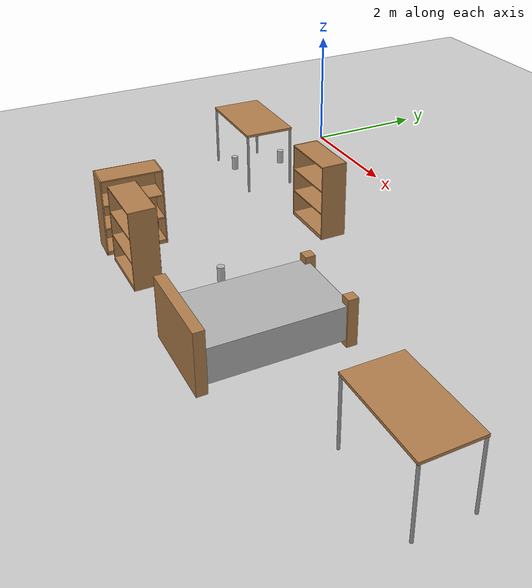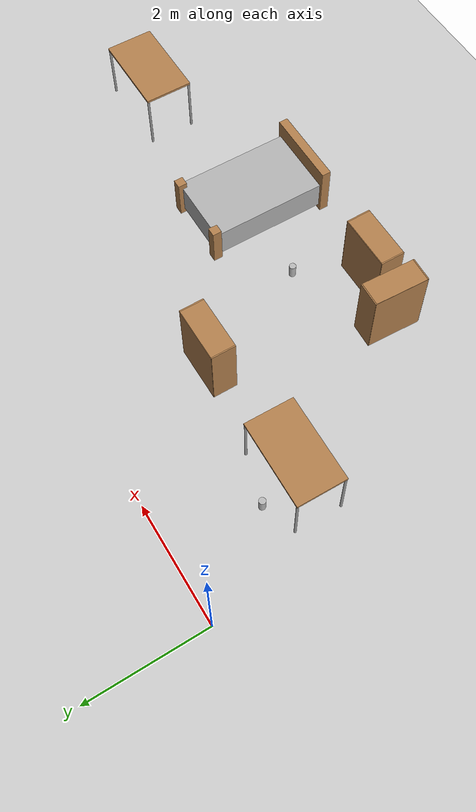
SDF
<sdf version="1.6">
 <world name="default">
  <model name="ground_plane">
   <static>1</static>
   <link name="link">
    <collision name="collision">
     <geometry><plane><normal>0 0 1</normal><size>100 100</size></plane></geometry>
     <surface><friction><ode><mu>100</mu><mu2>50</mu2></ode></friction></surface>
    </collision>
    <visual name="visual">
     <cast_shadows>0</cast_shadows>
     <geometry><plane><normal>0 0 1</normal><size>100 100</size></plane></geometry>
     <material>
      <script><uri>file://media/materials/scripts/gazebo.material</uri><name>Gazebo/Grey</name></script>
     </material>
    </visual>
   </link>
  </model>
  <model name="beer">
   <link name="link">
    <pose>0 0 0.115 0 -0 0</pose>
    <inertial>
     <mass>0.39</mass>
     <inertia><ixx>0.00058</ixx><ixy>0</ixy><ixz>0</ixz><iyy>0.00058</iyy><iyz>0</iyz><izz>0.00019</izz></inertia>
    </inertial>
    <collision name="collision">
     <geometry><cylinder><radius>0.055</radius><length>0.23</length></cylinder></geometry>
    </collision>
    <visual name="visual">
     <geometry><cylinder><radius>0.055</radius><length>0.23</length></cylinder></geometry>
     <material>
      <script>
       <uri>model://beer/materials/scripts</uri>
       <uri>model://beer/materials/textures</uri>
       <name>Beer/Diffuse</name>
      </script>
     </material>
    </visual>
   </link>
   <pose>1.03601 -1.42637 0.19999 1e-06 -2.7e-05 0.001528</pose>
  </model>
  <model name="beer_clone_0">
   <link name="link">
    <pose>0 0 0.115 0 -0 0</pose>
    <inertial>
     <mass>0.39</mass>
     <inertia><ixx>0.00058</ixx><ixy>0</ixy><ixz>0</ixz><iyy>0.00058</iyy><iyz>0</iyz><izz>0.00019</izz></inertia>
    </inertial>
    <collision name="collision">
     <geometry><cylinder><radius>0.055</radius><length>0.23</length></cylinder></geometry>
    </collision>
    <visual name="visual">
     <geometry><cylinder><radius>0.055</radius><length>0.23</length></cylinder></geometry>
     <material>
      <script>
       <uri>model://beer/materials/scripts</uri>
       <uri>model://beer/materials/textures</uri>
       <name>Beer/Diffuse</name>
      </script>
     </material>
    </visual>
   </link>
   <pose>0.906193 -2.25098 0.200001 3e-06 -2.5e-05 0.002007</pose>
  </model>
  <model name="beer_clone_3">
   <link name="link">
    <pose>0 0 0.115 0 -0 0</pose>
    <inertial>
     <mass>0.39</mass>
     <inertia><ixx>0.00058</ixx><ixy>0</ixy><ixz>0</ixz><iyy>0.00058</iyy><iyz>0</iyz><izz>0.00019</izz></inertia>
    </inertial>
    <collision name="collision">
     <geometry><cylinder><radius>0.055</radius><length>0.23</length></cylinder></geometry>
    </collision>
    <visual name="visual">
     <geometry><cylinder><radius>0.055</radius><length>0.23</length></cylinder></geometry>
     <material>
      <script>
       <uri>model://beer/materials/scripts</uri>
       <uri>model://beer/materials/textures</uri>
       <name>Beer/Diffuse</name>
      </script>
     </material>
    </visual>
   </link>
   <pose>4.12383 -3.89543 0.19999 -1e-06 2.6e-05 0.001054</pose>
  </model>
  <model name="table_1_clone_0">
   <static>0</static>
   <link name="link">
    <collision name="surface">
     <pose>0 0 1 0 -0 0</pose>
     <geometry><box><size>1.5 0.8 0.03</size></box></geometry>
     <surface><friction><ode><mu>0.6</mu><mu2>0.6</mu2></ode></friction></surface>
    </collision>
    <visual name="visual1">
     <pose>0 0 1 0 -0 0</pose>
     <geometry><box><size>1.4 0.8 0.04</size></box></geometry>
     <material>
      <script><uri>file://media/materials/scripts/gazebo.material</uri><name>Gazebo/Wood</name></script>
     </material>
    </visual>
    <collision name="front_left_leg">
     <pose>0.68 0.38 0.5 0 -0 0</pose>
     <geometry><cylinder><radius>0.02</radius><length>1</length></cylinder></geometry>
    </collision>
    <visual name="front_left_leg">
     <pose>0.68 0.38 0.5 0 -0 0</pose>
     <geometry><cylinder><radius>0.02</radius><length>1</length></cylinder></geometry>
     <material>
      <script><uri>file://media/materials/scripts/gazebo.material</uri><name>Gazebo/Grey</name></script>
     </material>
    </visual>
    <collision name="front_right_leg">
     <pose>0.68 -0.38 0.5 0 -0 0</pose>
     <geometry><cylinder><radius>0.02</radius><length>1</length></cylinder></geometry>
    </collision>
    <visual name="front_right_leg">
     <pose>0.68 -0.38 0.5 0 -0 0</pose>
     <geometry><cylinder><radius>0.02</radius><length>1</length></cylinder></geometry>
     <material>
      <script><uri>file://media/materials/scripts/gazebo.material</uri><name>Gazebo/Grey</name></script>
     </material>
    </visual>
    <collision name="back_right_leg">
     <pose>-0.68 -0.38 0.5 0 -0 0</pose>
     <geometry><cylinder><radius>0.02</radius><length>1</length></cylinder></geometry>
    </collision>
    <visual name="back_right_leg">
     <pose>-0.68 -0.38 0.5 0 -0 0</pose>
     <geometry><cylinder><radius>0.02</radius><length>1</length></cylinder></geometry>
     <material>
      <script><uri>file://media/materials/scripts/gazebo.material</uri><name>Gazebo/Grey</name></script>
     </material>
    </visual>
    <collision name="back_left_leg">
     <pose>-0.68 0.38 0.5 0 -0 0</pose>
     <geometry><cylinder><radius>0.02</radius><length>1</length></cylinder></geometry>
    </collision>
    <visual name="back_left_leg">
     <pose>-0.68 0.38 0.5 0 -0 0</pose>
     <geometry><cylinder><radius>0.02</radius><length>1</length></cylinder></geometry>
     <material>
      <script><uri>file://media/materials/scripts/gazebo.material</uri><name>Gazebo/Grey</name></script>
     </material>
    </visual>
    <inertial>
     <inertia><ixx>1</ixx><ixy>0</ixy><ixz>0</ixz><iyy>1</iyy><iyz>0</iyz><izz>1</izz></inertia>
     <mass>1</mass>
    </inertial>
   </link>
   <pose>1.15753 -2.01599 0.19999 0 0 -0.017169</pose>
  </model>
  <model name="table_1_clone_1">
   <static>0</static>
   <link name="link">
    <collision name="surface">
     <pose>0 0 1 0 -0 0</pose>
     <geometry><box><size>1.5 0.8 0.03</size></box></geometry>
     <surface><friction><ode><mu>0.6</mu><mu2>0.6</mu2></ode></friction></surface>
    </collision>
    <visual name="visual1">
     <pose>0 0 1 0 -0 0</pose>
     <geometry><box><size>1.4 0.8 0.04</size></box></geometry>
     <material>
      <script><uri>file://media/materials/scripts/gazebo.material</uri><name>Gazebo/Wood</name></script>
     </material>
    </visual>
    <collision name="front_left_leg">
     <pose>0.68 0.38 0.5 0 -0 0</pose>
     <geometry><cylinder><radius>0.02</radius><length>1</length></cylinder></geometry>
    </collision>
    <visual name="front_left_leg">
     <pose>0.68 0.38 0.5 0 -0 0</pose>
     <geometry><cylinder><radius>0.02</radius><length>1</length></cylinder></geometry>
     <material>
      <script><uri>file://media/materials/scripts/gazebo.material</uri><name>Gazebo/Grey</name></script>
     </material>
    </visual>
    <collision name="front_right_leg">
     <pose>0.68 -0.38 0.5 0 -0 0</pose>
     <geometry><cylinder><radius>0.02</radius><length>1</length></cylinder></geometry>
    </collision>
    <visual name="front_right_leg">
     <pose>0.68 -0.38 0.5 0 -0 0</pose>
     <geometry><cylinder><radius>0.02</radius><length>1</length></cylinder></geometry>
     <material>
      <script><uri>file://media/materials/scripts/gazebo.material</uri><name>Gazebo/Grey</name></script>
     </material>
    </visual>
    <collision name="back_right_leg">
     <pose>-0.68 -0.38 0.5 0 -0 0</pose>
     <geometry><cylinder><radius>0.02</radius><length>1</length></cylinder></geometry>
    </collision>
    <visual name="back_right_leg">
     <pose>-0.68 -0.38 0.5 0 -0 0</pose>
     <geometry><cylinder><radius>0.02</radius><length>1</length></cylinder></geometry>
     <material>
      <script><uri>file://media/materials/scripts/gazebo.material</uri><name>Gazebo/Grey</name></script>
     </material>
    </visual>
    <collision name="back_left_leg">
     <pose>-0.68 0.38 0.5 0 -0 0</pose>
     <geometry><cylinder><radius>0.02</radius><length>1</length></cylinder></geometry>
    </collision>
    <visual name="back_left_leg">
     <pose>-0.68 0.38 0.5 0 -0 0</pose>
     <geometry><cylinder><radius>0.02</radius><length>1</length></cylinder></geometry>
     <material>
      <script><uri>file://media/materials/scripts/gazebo.material</uri><name>Gazebo/Grey</name></script>
     </material>
    </visual>
    <inertial>
     <inertia><ixx>1</ixx><ixy>0</ixy><ixz>0</ixz><iyy>1</iyy><iyz>0</iyz><izz>1</izz></inertia>
     <mass>1</mass>
    </inertial>
   </link>
   <pose>8.36915 -3.69644 0.199992 -1e-06 1e-06 4.6e-05</pose>
  </model>
  <model name="bookshelf">
   <static>1</static>
   <link name="link">
    <inertial><mass>1</mass></inertial>
    <collision name="back">
     <pose>0 0.005 0.6 0 -0 0</pose>
     <geometry><box><size>0.9 0.01 1.2</size></box></geometry>
    </collision>
    <visual name="visual1">
     <pose>0 0.005 0.6 0 -0 0</pose>
     <geometry><box><size>0.9 0.01 1.2</size></box></geometry>
     <material>
      <script><uri>file://media/materials/scripts/gazebo.material</uri><name>Gazebo/Wood</name></script>
     </material>
    </visual>
    <collision name="left_side">
     <pose>0.45 -0.195 0.6 0 -0 0</pose>
     <geometry><box><size>0.02 0.4 1.2</size></box></geometry>
    </collision>
    <visual name="visual2">
     <pose>0.45 -0.195 0.6 0 -0 0</pose>
     <geometry><box><size>0.02 0.4 1.2</size></box></geometry>
     <material>
      <script><uri>file://media/materials/scripts/gazebo.material</uri><name>Gazebo/Wood</name></script>
     </material>
    </visual>
    <collision name="right_side">
     <pose>-0.45 -0.195 0.6 0 -0 0</pose>
     <geometry><box><size>0.02 0.4 1.2</size></box></geometry>
    </collision>
    <visual name="visual3">
     <pose>-0.45 -0.195 0.6 0 -0 0</pose>
     <geometry><box><size>0.02 0.4 1.2</size></box></geometry>
     <material>
      <script><uri>file://media/materials/scripts/gazebo.material</uri><name>Gazebo/Wood</name></script>
     </material>
    </visual>
    <collision name="bottom">
     <pose>0 -0.195 0.03 0 -0 0</pose>
     <geometry><box><size>0.88 0.4 0.06</size></box></geometry>
    </collision>
    <visual name="visual4">
     <pose>0 -0.195 0.03 0 -0 0</pose>
     <geometry><box><size>0.88 0.4 0.06</size></box></geometry>
     <material>
      <script><uri>file://media/materials/scripts/gazebo.material</uri><name>Gazebo/Wood</name></script>
     </material>
    </visual>
    <collision name="top">
     <pose>0 -0.195 1.19 0 -0 0</pose>
     <geometry><box><size>0.88 0.4 0.02</size></box></geometry>
    </collision>
    <visual name="visual5">
     <pose>0 -0.195 1.19 0 -0 0</pose>
     <geometry><box><size>0.88 0.4 0.02</size></box></geometry>
     <material>
      <script><uri>file://media/materials/scripts/gazebo.material</uri><name>Gazebo/Wood</name></script>
     </material>
    </visual>
    <collision name="low_shelf">
     <pose>0 -0.195 0.43 0 -0 0</pose>
     <geometry><box><size>0.88 0.4 0.02</size></box></geometry>
    </collision>
    <visual name="visual6">
     <pose>0 -0.195 0.43 0 -0 0</pose>
     <geometry><box><size>0.88 0.4 0.02</size></box></geometry>
     <material>
      <script><uri>file://media/materials/scripts/gazebo.material</uri><name>Gazebo/Wood</name></script>
     </material>
    </visual>
    <collision name="high_shelf">
     <pose>0 -0.195 0.8 0 -0 0</pose>
     <geometry><box><size>0.88 0.4 0.02</size></box></geometry>
    </collision>
    <visual name="visual7">
     <pose>0 -0.195 0.8 0 -0 0</pose>
     <geometry><box><size>0.88 0.4 0.02</size></box></geometry>
     <material>
      <script><uri>file://media/materials/scripts/gazebo.material</uri><name>Gazebo/Wood</name></script>
     </material>
    </visual>
   </link>
   <pose>3.3336 -1.72318 0.202596 0 -0 0</pose>
  </model>
  <model name="bookshelf_clone">
   <static>1</static>
   <link name="link">
    <inertial><mass>1</mass></inertial>
    <collision name="back">
     <pose>0 0.005 0.6 0 -0 0</pose>
     <geometry><box><size>0.9 0.01 1.2</size></box></geometry>
    </collision>
    <visual name="visual1">
     <pose>0 0.005 0.6 0 -0 0</pose>
     <geometry><box><size>0.9 0.01 1.2</size></box></geometry>
     <material>
      <script><uri>file://media/materials/scripts/gazebo.material</uri><name>Gazebo/Wood</name></script>
     </material>
    </visual>
    <collision name="left_side">
     <pose>0.45 -0.195 0.6 0 -0 0</pose>
     <geometry><box><size>0.02 0.4 1.2</size></box></geometry>
    </collision>
    <visual name="visual2">
     <pose>0.45 -0.195 0.6 0 -0 0</pose>
     <geometry><box><size>0.02 0.4 1.2</size></box></geometry>
     <material>
      <script><uri>file://media/materials/scripts/gazebo.material</uri><name>Gazebo/Wood</name></script>
     </material>
    </visual>
    <collision name="right_side">
     <pose>-0.45 -0.195 0.6 0 -0 0</pose>
     <geometry><box><size>0.02 0.4 1.2</size></box></geometry>
    </collision>
    <visual name="visual3">
     <pose>-0.45 -0.195 0.6 0 -0 0</pose>
     <geometry><box><size>0.02 0.4 1.2</size></box></geometry>
     <material>
      <script><uri>file://media/materials/scripts/gazebo.material</uri><name>Gazebo/Wood</name></script>
     </material>
    </visual>
    <collision name="bottom">
     <pose>0 -0.195 0.03 0 -0 0</pose>
     <geometry><box><size>0.88 0.4 0.06</size></box></geometry>
    </collision>
    <visual name="visual4">
     <pose>0 -0.195 0.03 0 -0 0</pose>
     <geometry><box><size>0.88 0.4 0.06</size></box></geometry>
     <material>
      <script><uri>file://media/materials/scripts/gazebo.material</uri><name>Gazebo/Wood</name></script>
     </material>
    </visual>
    <collision name="top">
     <pose>0 -0.195 1.19 0 -0 0</pose>
     <geometry><box><size>0.88 0.4 0.02</size></box></geometry>
    </collision>
    <visual name="visual5">
     <pose>0 -0.195 1.19 0 -0 0</pose>
     <geometry><box><size>0.88 0.4 0.02</size></box></geometry>
     <material>
      <script><uri>file://media/materials/scripts/gazebo.material</uri><name>Gazebo/Wood</name></script>
     </material>
    </visual>
    <collision name="low_shelf">
     <pose>0 -0.195 0.43 0 -0 0</pose>
     <geometry><box><size>0.88 0.4 0.02</size></box></geometry>
    </collision>
    <visual name="visual6">
     <pose>0 -0.195 0.43 0 -0 0</pose>
     <geometry><box><size>0.88 0.4 0.02</size></box></geometry>
     <material>
      <script><uri>file://media/materials/scripts/gazebo.material</uri><name>Gazebo/Wood</name></script>
     </material>
    </visual>
    <collision name="high_shelf">
     <pose>0 -0.195 0.8 0 -0 0</pose>
     <geometry><box><size>0.88 0.4 0.02</size></box></geometry>
    </collision>
    <visual name="visual7">
     <pose>0 -0.195 0.8 0 -0 0</pose>
     <geometry><box><size>0.88 0.4 0.02</size></box></geometry>
     <material>
      <script><uri>file://media/materials/scripts/gazebo.material</uri><name>Gazebo/Wood</name></script>
     </material>
    </visual>
   </link>
   <pose>3.3921 -4.66436 0.202596 0 -0 0</pose>
  </model>
  <model name="bookshelf_clone_0">
   <static>1</static>
   <link name="link">
    <inertial><mass>1</mass></inertial>
    <collision name="back">
     <pose>0 0.005 0.6 0 -0 0</pose>
     <geometry><box><size>0.9 0.01 1.2</size></box></geometry>
    </collision>
    <visual name="visual1">
     <pose>0 0.005 0.6 0 -0 0</pose>
     <geometry><box><size>0.9 0.01 1.2</size></box></geometry>
     <material>
      <script><uri>file://media/materials/scripts/gazebo.material</uri><name>Gazebo/Wood</name></script>
     </material>
    </visual>
    <collision name="left_side">
     <pose>0.45 -0.195 0.6 0 -0 0</pose>
     <geometry><box><size>0.02 0.4 1.2</size></box></geometry>
    </collision>
    <visual name="visual2">
     <pose>0.45 -0.195 0.6 0 -0 0</pose>
     <geometry><box><size>0.02 0.4 1.2</size></box></geometry>
     <material>
      <script><uri>file://media/materials/scripts/gazebo.material</uri><name>Gazebo/Wood</name></script>
     </material>
    </visual>
    <collision name="right_side">
     <pose>-0.45 -0.195 0.6 0 -0 0</pose>
     <geometry><box><size>0.02 0.4 1.2</size></box></geometry>
    </collision>
    <visual name="visual3">
     <pose>-0.45 -0.195 0.6 0 -0 0</pose>
     <geometry><box><size>0.02 0.4 1.2</size></box></geometry>
     <material>
      <script><uri>file://media/materials/scripts/gazebo.material</uri><name>Gazebo/Wood</name></script>
     </material>
    </visual>
    <collision name="bottom">
     <pose>0 -0.195 0.03 0 -0 0</pose>
     <geometry><box><size>0.88 0.4 0.06</size></box></geometry>
    </collision>
    <visual name="visual4">
     <pose>0 -0.195 0.03 0 -0 0</pose>
     <geometry><box><size>0.88 0.4 0.06</size></box></geometry>
     <material>
      <script><uri>file://media/materials/scripts/gazebo.material</uri><name>Gazebo/Wood</name></script>
     </material>
    </visual>
    <collision name="top">
     <pose>0 -0.195 1.19 0 -0 0</pose>
     <geometry><box><size>0.88 0.4 0.02</size></box></geometry>
    </collision>
    <visual name="visual5">
     <pose>0 -0.195 1.19 0 -0 0</pose>
     <geometry><box><size>0.88 0.4 0.02</size></box></geometry>
     <material>
      <script><uri>file://media/materials/scripts/gazebo.material</uri><name>Gazebo/Wood</name></script>
     </material>
    </visual>
    <collision name="low_shelf">
     <pose>0 -0.195 0.43 0 -0 0</pose>
     <geometry><box><size>0.88 0.4 0.02</size></box></geometry>
    </collision>
    <visual name="visual6">
     <pose>0 -0.195 0.43 0 -0 0</pose>
     <geometry><box><size>0.88 0.4 0.02</size></box></geometry>
     <material>
      <script><uri>file://media/materials/scripts/gazebo.material</uri><name>Gazebo/Wood</name></script>
     </material>
    </visual>
    <collision name="high_shelf">
     <pose>0 -0.195 0.8 0 -0 0</pose>
     <geometry><box><size>0.88 0.4 0.02</size></box></geometry>
    </collision>
    <visual name="visual7">
     <pose>0 -0.195 0.8 0 -0 0</pose>
     <geometry><box><size>0.88 0.4 0.02</size></box></geometry>
     <material>
      <script><uri>file://media/materials/scripts/gazebo.material</uri><name>Gazebo/Wood</name></script>
     </material>
    </visual>
   </link>
   <pose>2.39209 -4.6394 0.202596 0 -0 1.52697</pose>
  </model>
  <model name="bad_1_clone">
   <link name="link_0">
    <pose>-0.25 0 0.35 0 -0 0</pose>
    <inertial>
     <mass>1</mass>
     <inertia>
      <ixx>0.166667</ixx>
      <ixy>0</ixy>
      <ixz>0</ixz>
      <iyy>0.166667</iyy>
      <iyz>0</iyz>
      <izz>0.166667</izz>
     </inertia>
    </inertial>
    <visual name="visual">
     <geometry><box><size>2 1.2 0.5</size></box></geometry>
     <material>
      <lighting>1</lighting>
      <script><uri>file://media/materials/scripts/gazebo.material</uri><name>Gazebo/PioneerBody</name></script>
      <ambient>0.3 0.3 0.3 1</ambient>
      <diffuse>0.7 0.7 0.7 1</diffuse>
      <specular>0.01 0.01 0.01 1</specular>
      <emissive>0 0 0 1</emissive>
      <shader type="vertex"><normal_map>__default__</normal_map></shader>
     </material>
    </visual>
    <collision name="collision">
     <geometry><box><size>2 1.2 0.5</size></box></geometry>
     <surface>
      <friction>
       <ode><mu>1</mu><mu2>1</mu2><fdir1>0 0 0</fdir1><slip1>0</slip1><slip2>0</slip2></ode>
       <torsional>
        <coefficient>1</coefficient>
        <patch_radius>0</patch_radius>
        <surface_radius>0</surface_radius>
        <use_patch_radius>1</use_patch_radius>
        <ode><slip>0</slip></ode>
       </torsional>
      </friction>
      <bounce><restitution_coefficient>0</restitution_coefficient><threshold>1e+06</threshold></bounce>
      <contact>
       <collide_without_contact>0</collide_without_contact>
       <collide_without_contact_bitmask>1</collide_without_contact_bitmask>
       <collide_bitmask>1</collide_bitmask>
       <ode>
        <soft_cfm>0</soft_cfm>
        <soft_erp>0.2</soft_erp>
        <kp>1e+13</kp>
        <kd>1</kd>
        <max_vel>0.01</max_vel>
        <min_depth>0</min_depth>
       </ode>
       <bullet>
        <split_impulse>1</split_impulse>
        <split_impulse_penetration_threshold>-0.01</split_impulse_penetration_threshold>
        <soft_cfm>0</soft_cfm>
        <soft_erp>0.2</soft_erp>
        <kp>1e+13</kp>
        <kd>1</kd>
       </bullet>
      </contact>
     </surface>
    </collision>
   </link>
   <link name="link_1">
    <pose>-1.25 0 0.45 0 -0 0</pose>
    <inertial>
     <mass>1</mass>
     <inertia>
      <ixx>0.166667</ixx>
      <ixy>0</ixy>
      <ixz>0</ixz>
      <iyy>0.166667</iyy>
      <iyz>0</iyz>
      <izz>0.166667</izz>
     </inertia>
    </inertial>
    <visual name="visual">
     <geometry><box><size>0.15 1.3 0.9</size></box></geometry>
     <material>
      <lighting>1</lighting>
      <script><uri>file://media/materials/scripts/gazebo.material</uri><name>Gazebo/Wood</name></script>
      <ambient>0.3 0.3 0.3 1</ambient>
      <diffuse>0.7 0.7 0.7 1</diffuse>
      <specular>0.01 0.01 0.01 1</specular>
      <emissive>0 0 0 1</emissive>
      <shader type="vertex"><normal_map>__default__</normal_map></shader>
     </material>
    </visual>
    <collision name="collision">
     <geometry><box><size>0.15 1.3 0.9</size></box></geometry>
     <surface>
      <friction>
       <ode><mu>1</mu><mu2>1</mu2><fdir1>0 0 0</fdir1><slip1>0</slip1><slip2>0</slip2></ode>
       <torsional>
        <coefficient>1</coefficient>
        <patch_radius>0</patch_radius>
        <surface_radius>0</surface_radius>
        <use_patch_radius>1</use_patch_radius>
        <ode><slip>0</slip></ode>
       </torsional>
      </friction>
      <bounce><restitution_coefficient>0</restitution_coefficient><threshold>1e+06</threshold></bounce>
      <contact>
       <collide_without_contact>0</collide_without_contact>
       <collide_without_contact_bitmask>1</collide_without_contact_bitmask>
       <collide_bitmask>1</collide_bitmask>
       <ode>
        <soft_cfm>0</soft_cfm>
        <soft_erp>0.2</soft_erp>
        <kp>1e+13</kp>
        <kd>1</kd>
        <max_vel>0.01</max_vel>
        <min_depth>0</min_depth>
       </ode>
       <bullet>
        <split_impulse>1</split_impulse>
        <split_impulse_penetration_threshold>-0.01</split_impulse_penetration_threshold>
        <soft_cfm>0</soft_cfm>
        <soft_erp>0.2</soft_erp>
        <kp>1e+13</kp>
        <kd>1</kd>
       </bullet>
      </contact>
     </surface>
    </collision>
   </link>
   <link name="link_1_clone">
    <pose>0.75 -0.55 0.35 0 -0 0</pose>
    <inertial>
     <mass>1</mass>
     <inertia>
      <ixx>0.166667</ixx>
      <ixy>0</ixy>
      <ixz>0</ixz>
      <iyy>0.166667</iyy>
      <iyz>0</iyz>
      <izz>0.166667</izz>
     </inertia>
    </inertial>
    <visual name="visual">
     <geometry><box><size>0.15 0.15 0.7</size></box></geometry>
     <material>
      <lighting>1</lighting>
      <script><uri>file://media/materials/scripts/gazebo.material</uri><name>Gazebo/Wood</name></script>
      <ambient>0.3 0.3 0.3 1</ambient>
      <diffuse>0.7 0.7 0.7 1</diffuse>
      <specular>0.01 0.01 0.01 1</specular>
      <emissive>0 0 0 1</emissive>
      <shader type="vertex"><normal_map>__default__</normal_map></shader>
     </material>
    </visual>
    <collision name="collision">
     <geometry><box><size>0.15 0.15 0.7</size></box></geometry>
     <surface>
      <friction>
       <ode><mu>1</mu><mu2>1</mu2><fdir1>0 0 0</fdir1><slip1>0</slip1><slip2>0</slip2></ode>
       <torsional>
        <coefficient>1</coefficient>
        <patch_radius>0</patch_radius>
        <surface_radius>0</surface_radius>
        <use_patch_radius>1</use_patch_radius>
        <ode><slip>0</slip></ode>
       </torsional>
      </friction>
      <bounce><restitution_coefficient>0</restitution_coefficient><threshold>1e+06</threshold></bounce>
      <contact>
       <collide_without_contact>0</collide_without_contact>
       <collide_without_contact_bitmask>1</collide_without_contact_bitmask>
       <collide_bitmask>1</collide_bitmask>
       <ode>
        <soft_cfm>0</soft_cfm>
        <soft_erp>0.2</soft_erp>
        <kp>1e+13</kp>
        <kd>1</kd>
        <max_vel>0.01</max_vel>
        <min_depth>0</min_depth>
       </ode>
       <bullet>
        <split_impulse>1</split_impulse>
        <split_impulse_penetration_threshold>-0.01</split_impulse_penetration_threshold>
        <soft_cfm>0</soft_cfm>
        <soft_erp>0.2</soft_erp>
        <kp>1e+13</kp>
        <kd>1</kd>
       </bullet>
      </contact>
     </surface>
    </collision>
   </link>
   <link name="link_1_clone_clone">
    <pose>0.75 0.55 0.35 0 -0 0</pose>
    <inertial>
     <mass>1</mass>
     <inertia>
      <ixx>0.166667</ixx>
      <ixy>0</ixy>
      <ixz>0</ixz>
      <iyy>0.166667</iyy>
      <iyz>0</iyz>
      <izz>0.166667</izz>
     </inertia>
    </inertial>
    <visual name="visual">
     <geometry><box><size>0.15 0.15 0.7</size></box></geometry>
     <material>
      <lighting>1</lighting>
      <script><uri>file://media/materials/scripts/gazebo.material</uri><name>Gazebo/Wood</name></script>
      <ambient>0.3 0.3 0.3 1</ambient>
      <diffuse>0.7 0.7 0.7 1</diffuse>
      <specular>0.01 0.01 0.01 1</specular>
      <emissive>0 0 0 1</emissive>
      <shader type="vertex"><normal_map>__default__</normal_map></shader>
     </material>
    </visual>
    <collision name="collision">
     <geometry><box><size>0.15 0.15 0.7</size></box></geometry>
     <surface>
      <friction>
       <ode><mu>1</mu><mu2>1</mu2><fdir1>0 0 0</fdir1><slip1>0</slip1><slip2>0</slip2></ode>
       <torsional>
        <coefficient>1</coefficient>
        <patch_radius>0</patch_radius>
        <surface_radius>0</surface_radius>
        <use_patch_radius>1</use_patch_radius>
        <ode><slip>0</slip></ode>
       </torsional>
      </friction>
      <bounce><restitution_coefficient>0</restitution_coefficient><threshold>1e+06</threshold></bounce>
      <contact>
       <collide_without_contact>0</collide_without_contact>
       <collide_without_contact_bitmask>1</collide_without_contact_bitmask>
       <collide_bitmask>1</collide_bitmask>
       <ode>
        <soft_cfm>0</soft_cfm>
        <soft_erp>0.2</soft_erp>
        <kp>1e+13</kp>
        <kd>1</kd>
        <max_vel>0.01</max_vel>
        <min_depth>0</min_depth>
       </ode>
       <bullet>
        <split_impulse>1</split_impulse>
        <split_impulse_penetration_threshold>-0.01</split_impulse_penetration_threshold>
        <soft_cfm>0</soft_cfm>
        <soft_erp>0.2</soft_erp>
        <kp>1e+13</kp>
        <kd>1</kd>
       </bullet>
      </contact>
     </surface>
    </collision>
   </link>
   <joint name="link_0_JOINT_0" type="fixed">
    <parent>link_0</parent>
    <child>link_1</child>
    <physics>
     <ode><limit><cfm>0</cfm><erp>0.2</erp></limit><suspension><cfm>0</cfm><erp>0.2</erp></suspension></ode>
    </physics>
   </joint>
   <joint name="link_0_JOINT_1" type="fixed">
    <parent>link_0</parent>
    <child>link_1_clone</child>
    <physics>
     <ode><limit><cfm>0</cfm><erp>0.2</erp></limit><suspension><cfm>0</cfm><erp>0.2</erp></suspension></ode>
    </physics>
   </joint>
   <joint name="link_0_JOINT_2" type="fixed">
    <parent>link_0</parent>
    <child>link_1_clone_clone</child>
    <physics>
     <ode><limit><cfm>0</cfm><erp>0.2</erp></limit><suspension><cfm>0</cfm><erp>0.2</erp></suspension></ode>
    </physics>
   </joint>
   <static>0</static>
   <pose>5.61074 -3.79149 0.2 1e-06 -0 1.56717</pose>
  </model>
 </world>
</sdf>
